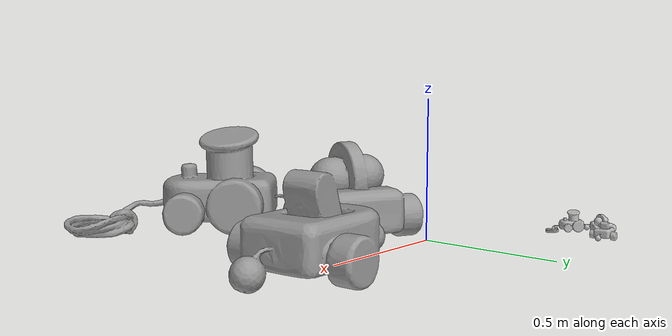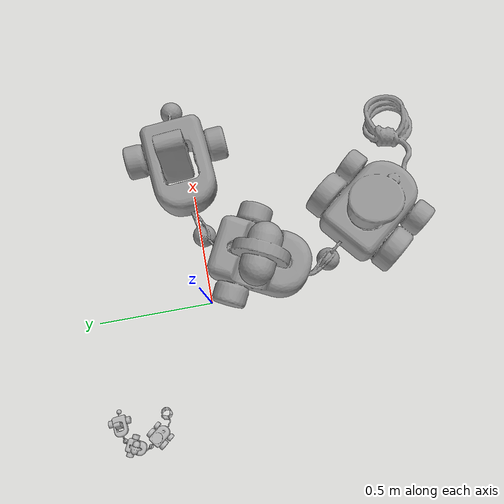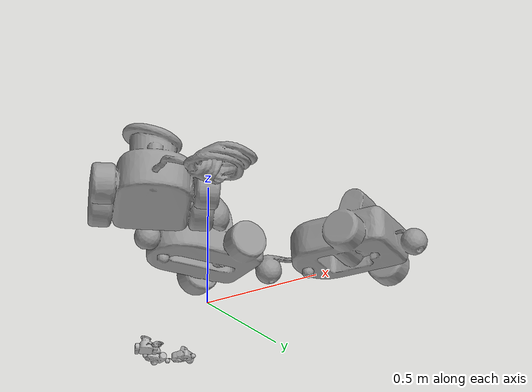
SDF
<?xml version='1.0'?>
<sdf version='1.6'>
  <model name='toy'>
    <link name='link_0'>
      <pose frame=''>0.472666 -0.38017 0 0 -0 0</pose>
      <inertial>
        <mass>1</mass>
        <inertia>
          <ixx>0.166667</ixx>
          <ixy>0</ixy>
          <ixz>0</ixz>
          <iyy>0.166667</iyy>
          <iyz>0</iyz>
          <izz>0.166667</izz>
        </inertia>
        <pose frame=''>0 0 0 0 -0 0</pose>
      </inertial>
      <gravity>1</gravity>
      <self_collide>0</self_collide>
      <kinematic>0</kinematic>
      <visual name='visual'>
        <pose frame=''>0 0 0 0 -0 0</pose>
        <geometry>
          <mesh>
            <uri>/home/workspace/Project1/model/Happy_Engine/meshes/model.obj</uri>
            <scale>5 5 5</scale>
          </mesh>
        </geometry>
        <material>
          <lighting>1</lighting>
          <script>
            <uri>file://media/materials/scripts/gazebo.material</uri>
            <name>Gazebo/Grey</name>
          </script>
          <shader type='pixel'>
            <normal_map>__default__</normal_map>
          </shader>
          <ambient>0.3 0.3 0.3 1</ambient>
          <diffuse>0.7 0.7 0.7 1</diffuse>
          <specular>0.01 0.01 0.01 1</specular>
          <emissive>0 0 0 1</emissive>
        </material>
        <transparency>0</transparency>
        <cast_shadows>1</cast_shadows>
      </visual>
      <collision name='collision'>
        <laser_retro>0</laser_retro>
        <max_contacts>10</max_contacts>
        <pose frame=''>0 0 0 0 -0 0</pose>
        <geometry>
          <mesh>
            <uri>/home/workspace/Project1/model/Happy_Engine/meshes/model.obj</uri>
            <scale>5 5 5</scale>
          </mesh>
        </geometry>
        <surface>
          <friction>
            <ode>
              <mu>1</mu>
              <mu2>1</mu2>
              <fdir1>0 0 0</fdir1>
              <slip1>0</slip1>
              <slip2>0</slip2>
            </ode>
            <torsional>
              <coefficient>1</coefficient>
              <patch_radius>0</patch_radius>
              <surface_radius>0</surface_radius>
              <use_patch_radius>1</use_patch_radius>
              <ode>
                <slip>0</slip>
              </ode>
            </torsional>
          </friction>
          <bounce>
            <restitution_coefficient>0</restitution_coefficient>
            <threshold>1e+06</threshold>
          </bounce>
          <contact>
            <collide_without_contact>0</collide_without_contact>
            <collide_without_contact_bitmask>1</collide_without_contact_bitmask>
            <collide_bitmask>1</collide_bitmask>
            <ode>
              <soft_cfm>0</soft_cfm>
              <soft_erp>0.2</soft_erp>
              <kp>1e+13</kp>
              <kd>1</kd>
              <max_vel>0.01</max_vel>
              <min_depth>0</min_depth>
            </ode>
            <bullet>
              <split_impulse>1</split_impulse>
              <split_impulse_penetration_threshold>-0.01</split_impulse_penetration_threshold>
              <soft_cfm>0</soft_cfm>
              <soft_erp>0.2</soft_erp>
              <kp>1e+13</kp>
              <kd>1</kd>
            </bullet>
          </contact>
        </surface>
      </collision>
    </link>
    <model name='HAPPY_ENGINE'>
      <link name='link_0'>
        <visual name='visual'>
          <geometry>
            <mesh>
              <uri>meshes/model.obj</uri>
            </mesh>
          </geometry>
        </visual>
        <collision name='collision_0'>
          <geometry>
            <mesh>
              <uri>meshes/model.obj</uri>
            </mesh>
          </geometry>
        </collision>
      </link>
      <pose frame=''>-0.472666 0.380171 0 0 -0 0</pose>
    </model>
    <static>0</static>
    <allow_auto_disable>1</allow_auto_disable>
  </model>
</sdf>
